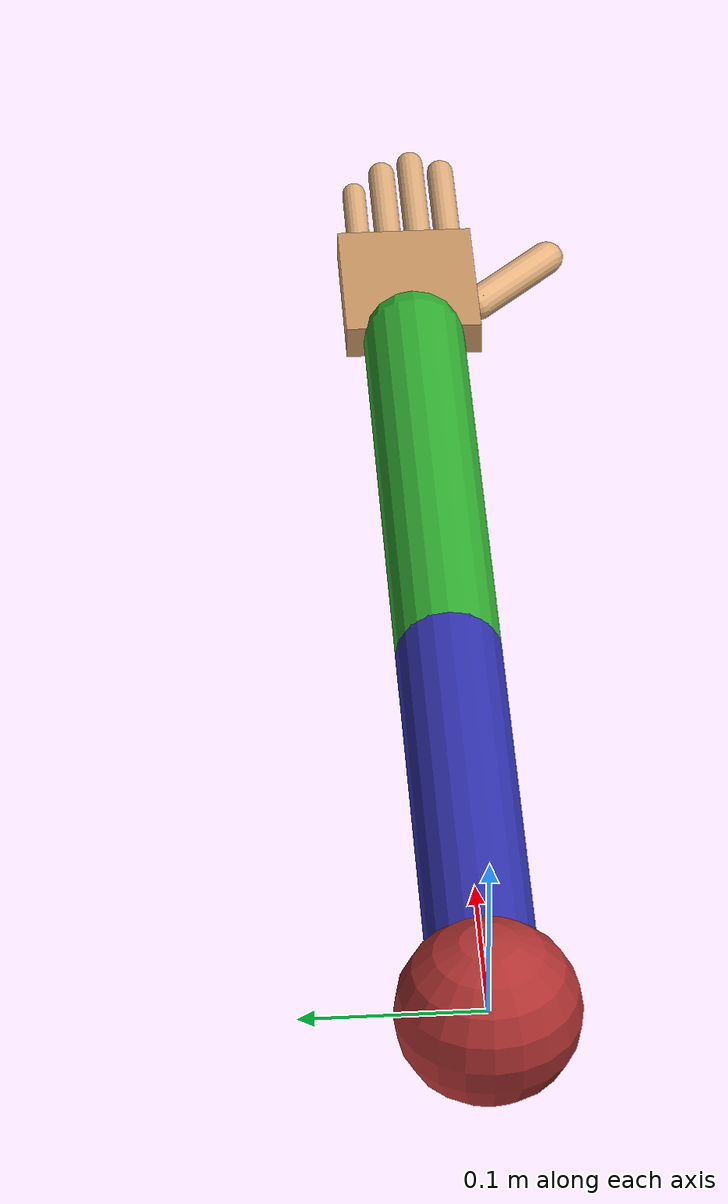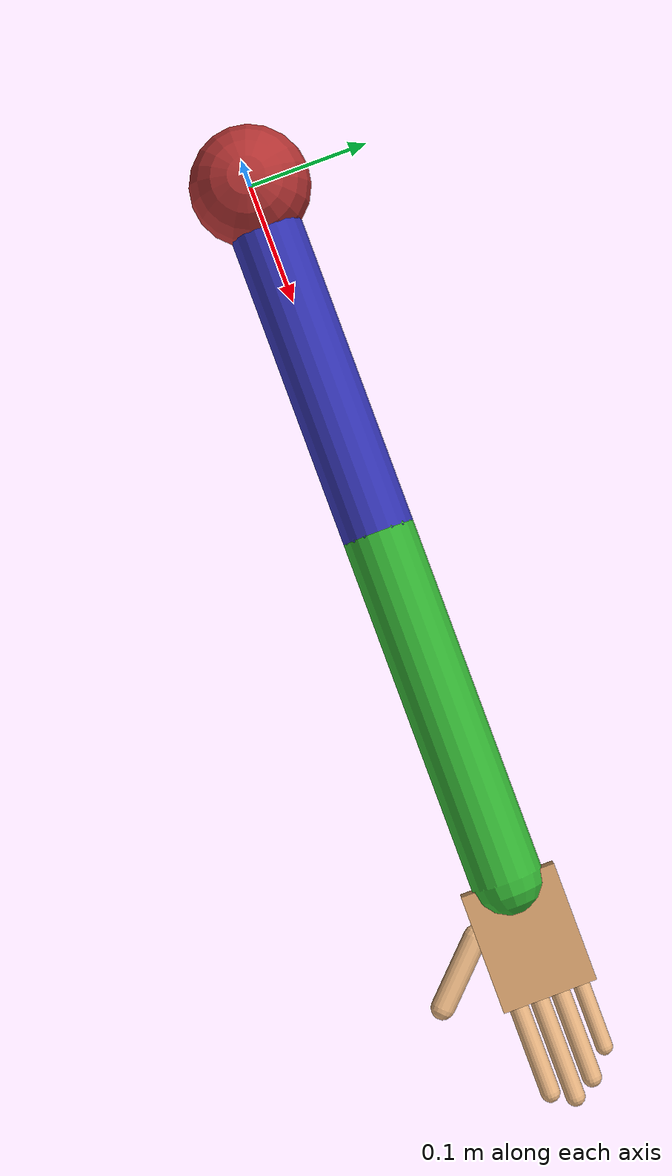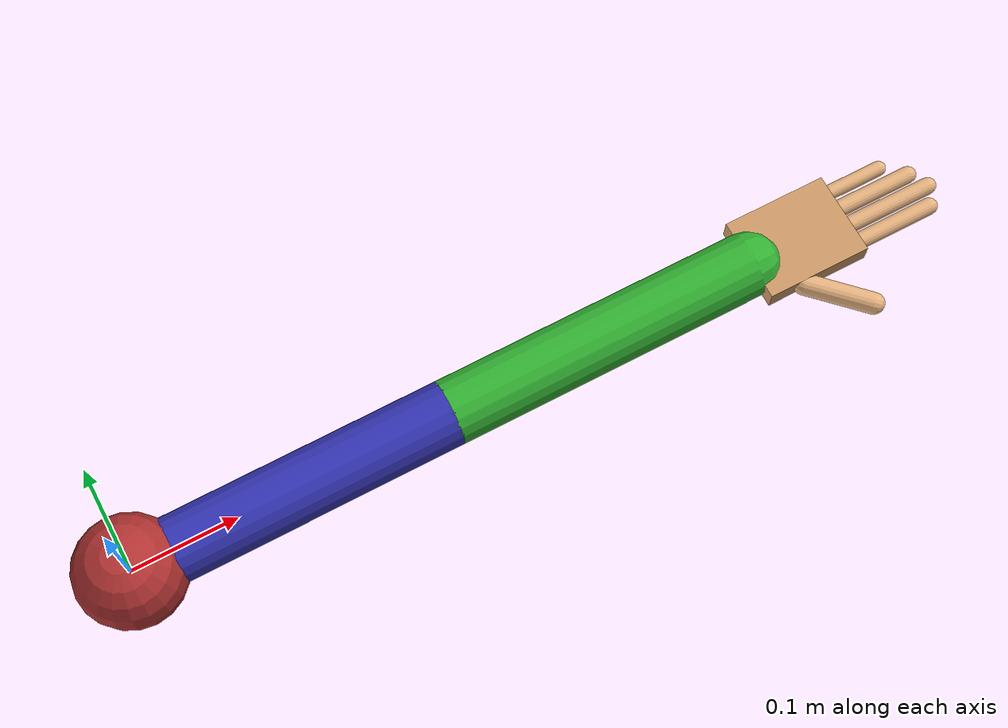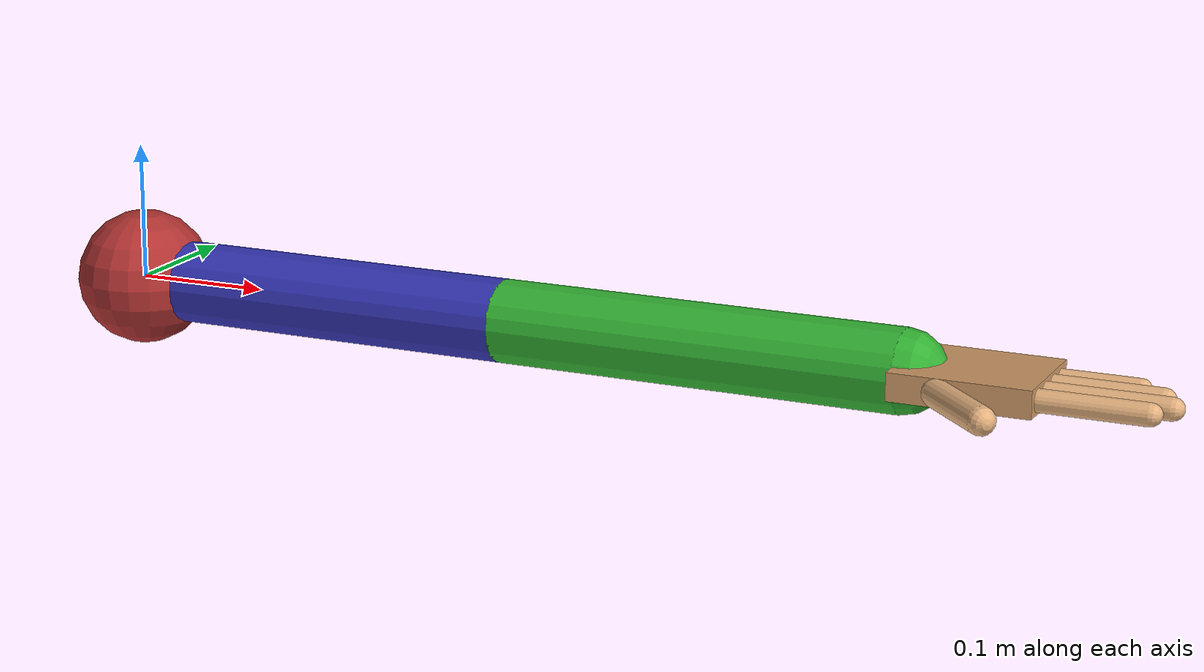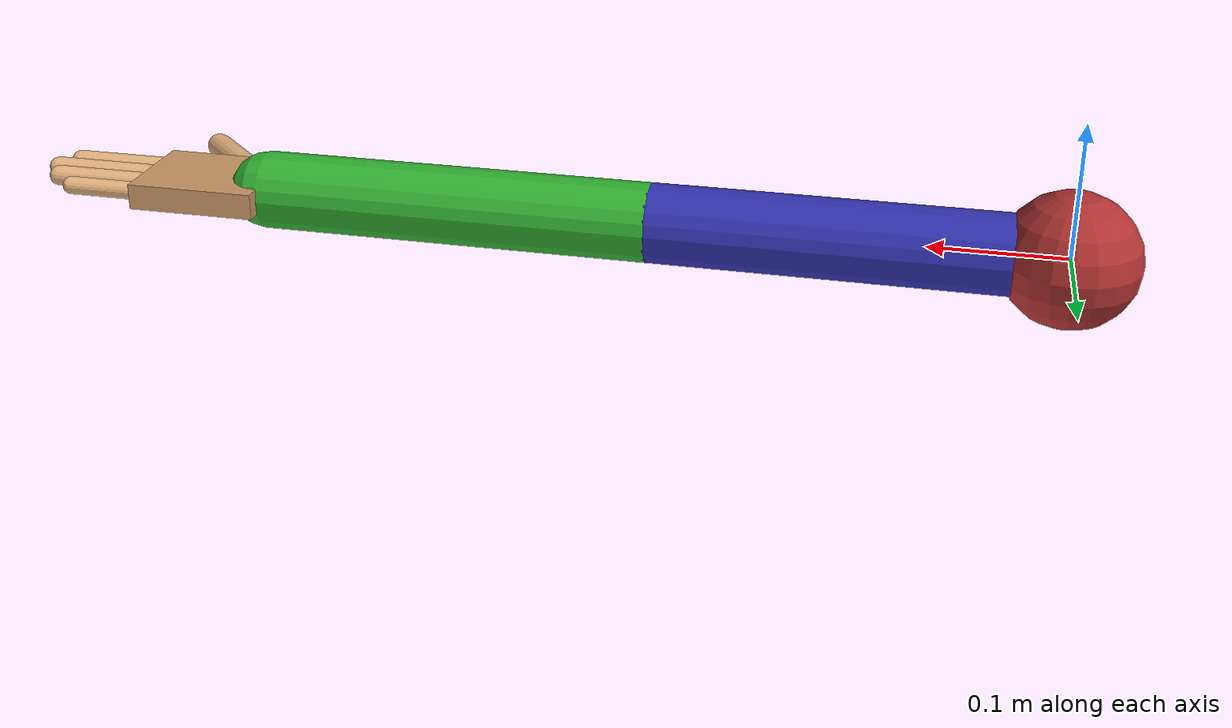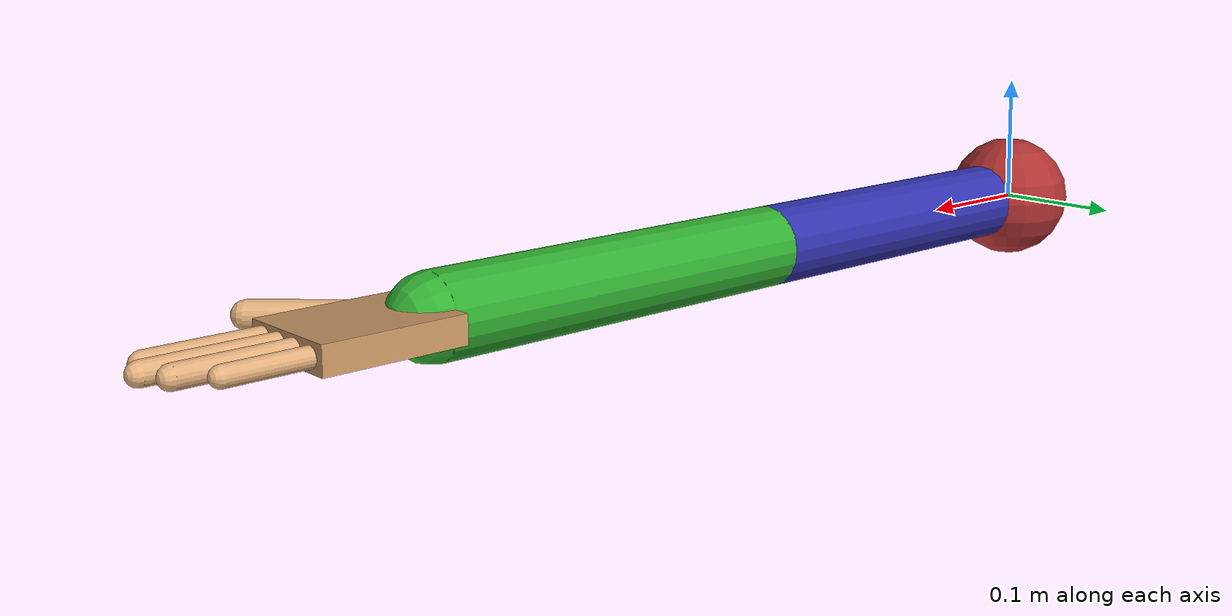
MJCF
<mujoco model="3R_robotic_arm">
    <compiler angle="radian" coordinate="local" />
    <option timestep="0.01" gravity="0 0 -9.81" />

    <worldbody>
        <!-- Base of the robotic arm -->
        <body name="base" pos="0 0 0">
            <geom type="sphere" size="0.05" rgba="0.7 0.2 0.2 1" />

            <!-- First link -->
            <body name="link1" pos="0 0 0">
                <joint name="joint1" type="hinge" axis="0 0 1" range="-3.14 3.14" />
                <geom type="capsule" fromto="0 0 0 0.3 0 0" size="0.03" rgba="0.2 0.2 0.7 1" />

                <!-- Second link -->
                <body name="link2" pos="0.3 0 0">
                    <joint name="joint2" type="hinge" axis="0 0 1" range="-3.14 3.14" />
                    <geom type="capsule" fromto="0 0 0 0.3 0 0" size="0.03" rgba="0.2 0.7 0.2 1" />

                    <!-- Thrid link -->
                    <body name="hand" pos="0.3 0 0">
                        <joint name="wrist" type="hinge" axis="0 0 1"
                            limited="true" range="-1.5708 1.5708" />

                        <!-- Palm: 10 cm long, 8 cm wide, 2 cm thick -->
                        <!-- Box size values are HALF dimensions -->
                        <geom name="palm" type="box"
                            pos="0.05 0 0" size="0.05 0.04 0.01"
                            mass="0.15" rgba="0.8 0.6 0.4 1" />

                        <!-- Four fingers extend along the local X direction -->
                        <geom name="index_finger" type="capsule"
                            fromto="0.10 -0.027 0  0.175 -0.027 0"
                            size="0.008" mass="0.025" rgba="0.9 0.7 0.5 1" />

                        <geom name="middle_finger" type="capsule"
                            fromto="0.10 -0.009 0  0.185 -0.009 0"
                            size="0.008" mass="0.03" rgba="0.9 0.7 0.5 1" />

                        <geom name="ring_finger" type="capsule"
                            fromto="0.10 0.009 0  0.175 0.009 0"
                            size="0.008" mass="0.025" rgba="0.9 0.7 0.5 1" />

                        <geom name="little_finger" type="capsule"
                            fromto="0.10 0.027 0  0.155 0.027 0"
                            size="0.007" mass="0.02" rgba="0.9 0.7 0.5 1" />

                        <!-- Thumb points diagonally out from the palm -->
                        <geom name="thumb" type="capsule"
                            fromto="0.035 -0.04 0  0.08 -0.085 0"
                            size="0.01" mass="0.03" rgba="0.9 0.7 0.5 1" />

                        </body>
                    </body>
                </body>
            </body>
        </worldbody>

        <actuator>
            <motor joint="joint1" ctrlrange="-50 50" />
            <motor joint="joint2" ctrlrange="-50 50" />
            <motor joint="wrist" ctrlrange="-5 5" />

        </actuator>
    </mujoco>
